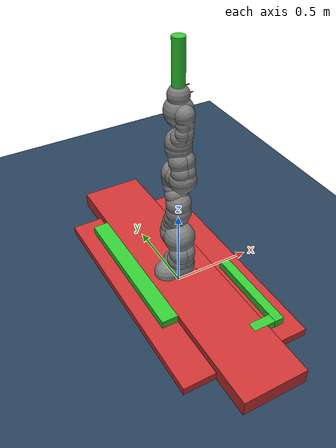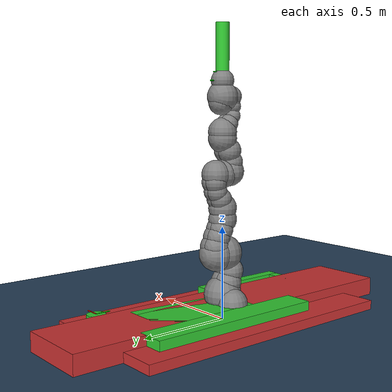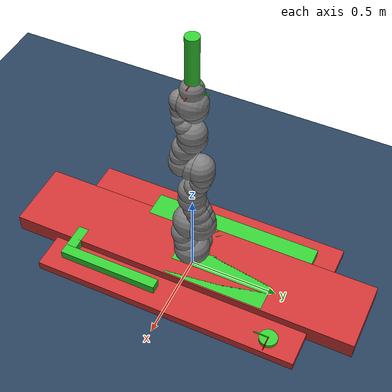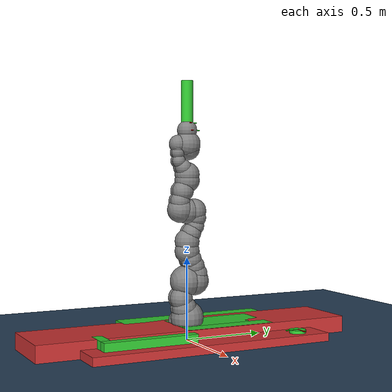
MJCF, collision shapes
<mujoco model="ur5e scene">
  <compiler angle="radian" meshdir="kuka/assets" autolimits="true"/>

  <statistic center="0.3 0 0.4" extent="0.8"/>

  <visual>
    <headlight diffuse="0.6 0.6 0.6" ambient="0.1 0.1 0.1" specular="0 0 0"/>
    <rgba haze="0.15 0.25 0.35 1"/>
    <global azimuth="120" elevation="-20"/>
  </visual>

  <asset>
    <texture type="skybox" builtin="gradient" rgb1="0.3 0.5 0.7" rgb2="0 0 0" width="512" height="3072"/>
    <texture type="2d" name="groundplane" builtin="checker" mark="edge" rgb1="0.2 0.3 0.4" rgb2="0.1 0.2 0.3" markrgb="0.8 0.8 0.8" width="300" height="300"/>
    <material name="groundplane" texture="groundplane" texuniform="true" texrepeat="5 5" reflectance="0.2"/>
  <material class="iiwa" name="gray" rgba="0.4 0.4 0.4 1"/>
    <material class="iiwa" name="light_gray" rgba="0.6 0.6 0.6 1"/>
    <material class="iiwa" name="black" rgba="0 0 0 1"/>
    <material class="iiwa" name="orange" rgba="1 0.423529 0.0392157 1"/>

    <mesh file="link_0.obj"/>
    <mesh file="link_1.obj"/>
    <mesh file="link_2_orange.obj"/>
    <mesh file="link_2_grey.obj"/>
    <mesh file="link_3.obj"/>
    <mesh file="band.obj"/>
    <mesh file="kuka.obj"/>
    <mesh file="link_4_orange.obj"/>
    <mesh file="link_4_grey.obj"/>
    <mesh file="link_5.obj"/>
    <mesh file="link_6_orange.obj"/>
    <mesh file="link_6_grey.obj"/>
    <mesh file="link_7.obj"/>
  <mesh name="tool_mesh" file="driller.obj"/>
  <mesh name="aluminium_plate_mesh" file="aluminium_plate.obj"/>
  <mesh name="guide_mesh" file="Linear_guide.obj"/>
  </asset>

  <worldbody>
    <light pos="0 0 1.5" dir="0 0 -1" directional="true"/>
    <geom name="floor" size="0 0 0.05" type="plane" material="groundplane"/>
    <!-- Definition of the world frame -->
    <body name="world_frame" pos="0.0 0.0 0.0">
        <geom name="world_x_axis" type="capsule" fromto="0 0 0 0.15 0 0" size="0.01" rgba="1 0 0 1" contype="0" conaffinity="0"/>
        <geom name="world_y_axis" type="capsule" fromto="0 0 0 0 0.15 0" size="0.01" rgba="0 1 0 1" contype="0" conaffinity="0"/>
        <geom name="world_z_axis" type="capsule" fromto="0 0 0 0 0 0.15" size="0.01" rgba="0 0 1 1" contype="0" conaffinity="0"/>
    </body>

  <light name="top" pos="0 0 2" mode="trackcom"/>
    <body name="base" childclass="iiwa">
      <inertial mass="5" pos="-0.1 0 0.07" diaginertia="0.05 0.06 0.03"/>
      <geom class="visual" mesh="link_0"/>
      <geom class="collision" size="0.08" pos="-0.08 0 0.103"/>
      <geom class="collision" size="0.08" pos="-0.08 0 0.04"/>
      <geom class="collision" size="0.1" pos="0 0 0.14"/>
      <body name="link1" pos="0 0 0.1575">
        <inertial mass="5.76" pos="0 -0.03 0.12" diaginertia="0.0333 0.033 0.0123"/>
        <joint name="joint1" class="joint1"/>
        <geom class="visual" mesh="link_1"/>
        <geom class="collision" size="0.08" pos="0 0 -0.0005"/>
        <geom class="collision" size="0.075" pos="0.01 -0.025 0.0425"/>
        <geom class="collision" size="0.075" pos="-0.01 -0.025 0.0425"/>
        <geom class="collision" size="0.07" pos="0.01 -0.045 0.1025"/>
        <geom class="collision" size="0.07" pos="-0.01 -0.045 0.1025"/>
        <body name="link2" pos="0 0 0.2025" quat="0 0 1 1">
          <inertial mass="6.35" pos="0.0003 0.059 0.042" diaginertia="0.0305 0.0304 0.011" quat="0 0 1 1"/>
          <joint name="joint2" class="joint2"/>
          <geom class="visual" material="orange" mesh="link_2_orange"/>
          <geom class="visual" mesh="link_2_grey"/>
          <geom class="collision" size="0.095" pos="0 0 -0.01"/>
          <geom class="collision" size="0.09" pos="0 0 0.045"/>
          <geom class="collision" size="0.07" pos="-0.01 0.04 0.054"/>
          <geom class="collision" size="0.065" pos="-0.01 0.09 0.04"/>
          <geom class="collision" size="0.065" pos="-0.01 0.13 0.02"/>
          <geom class="collision" size="0.07" pos="0.01 0.04 0.054"/>
          <geom class="collision" size="0.065" pos="0.01 0.09 0.04"/>
          <geom class="collision" size="0.065" pos="0.01 0.13 0.02"/>
          <geom class="collision" size="0.075" pos="0 0.18 0"/>
          <body name="link3" pos="0 0.2045 0" quat="0 0 1 1">
            <inertial mass="3.5" pos="0 0.03 0.13" diaginertia="0.025 0.0238 0.0076"/>
            <joint name="joint3" class="joint1"/>
            <geom class="visual" mesh="link_3"/>
            <geom class="visual" material="light_gray" mesh="band"/>
            <geom class="visual" material="black" mesh="kuka"/>
            <geom class="collision" size="0.075" pos="0 0 0.0355"/>
            <geom class="collision" size="0.06" pos="0.01 0.023 0.0855"/>
            <geom class="collision" size="0.055" pos="0.01 0.048 0.1255"/>
            <geom class="collision" size="0.06" pos="0.01 0.056 0.1755"/>
            <geom class="collision" size="0.06" pos="-0.01 0.023 0.0855"/>
            <geom class="collision" size="0.055" pos="-0.01 0.048 0.1255"/>
            <geom class="collision" size="0.06" pos="-0.01 0.056 0.1755"/>
            <geom class="collision" size="0.075" pos="0 0.045 0.2155"/>
            <geom class="collision" size="0.075" pos="0 0 0.2155"/>
            <body name="link4" pos="0 0 0.2155" quat="1 1 0 0">
              <inertial mass="3.5" pos="0 0.067 0.034" diaginertia="0.017 0.0164 0.006" quat="1 1 0 0"/>
              <joint name="joint4" class="joint2"/>
              <geom class="visual" material="orange" mesh="link_4_orange"/>
              <geom class="visual" mesh="link_4_grey"/>
              <geom class="collision" size="0.078" pos="0 0.01 0.046"/>
              <geom class="collision" size="0.06" pos="0.01 0.06 0.052"/>
              <geom class="collision" size="0.065" pos="0.01 0.12 0.034"/>
              <geom class="collision" size="0.06" pos="-0.01 0.06 0.052"/>
              <geom class="collision" size="0.065" pos="-0.01 0.12 0.034"/>
              <geom class="collision" size="0.075" pos="0 0.184 0"/>
              <body name="link5" pos="0 0.1845 0" quat="0 0 1 1">
                <inertial mass="3.5" pos="0.0001 0.021 0.076" diaginertia="0.01 0.0087 0.00449"/>
                <joint name="joint5" class="joint1"/>
                <geom class="visual" mesh="link_5"/>
                <geom class="visual" material="light_gray" mesh="band"/>
                <geom class="visual" material="black" mesh="kuka"/>
                <geom class="collision" size="0.075" pos="0 0 0.0335"/>
                <geom class="collision" size="0.05" pos="-0.012 0.031 0.0755"/>
                <geom class="collision" size="0.05" pos="0.012 0.031 0.0755"/>
                <geom class="collision" size="0.04" pos="-0.012 0.06 0.1155"/>
                <geom class="collision" size="0.04" pos="0.012 0.06 0.1155"/>
                <geom class="collision" size="0.04" pos="-0.01 0.065 0.1655"/>
                <geom class="collision" size="0.04" pos="0.01 0.065 0.1655"/>
                <geom class="collision" size="0.035" pos="-0.012 0.065 0.1855"/>
                <geom class="collision" size="0.035" pos="0.012 0.065 0.1855"/>
                <body name="link6" pos="0 0 0.2155" quat="1 1 0 0">
                  <inertial mass="1.8" pos="0 0.0006 0.0004" diaginertia="0.0049 0.0047 0.0036" quat="1 1 0 0"/>
                  <joint name="joint6" class="joint2"/>
                  <geom class="visual" material="orange" mesh="link_6_orange"/>
                  <geom class="visual" mesh="link_6_grey"/>
                  <geom class="collision" size="0.055" pos="0 0 -0.059"/>
                  <geom class="collision" size="0.065" pos="0 -0.03 0.011"/>
                  <geom class="collision" size="0.08"/>
                  <body name="link7" pos="0 0.081 0" quat="0 0 1 1">
                    <inertial mass="1.2" pos="0 0 0.02" diaginertia="0.001 0.001 0.001"/>
                    <!-- Reference frame: wrist_3_link -->
                    <geom type="capsule" fromto="0 0 0 0.08 0 0" rgba="1 0 0 1" size="0.003" contype="0" conaffinity="0"/>
                    <geom type="capsule" fromto="0 0 0 0 0.08 0" rgba="0 1 0 1" size="0.003" contype="0" conaffinity="0"/>
                    <geom type="capsule" fromto="0 0 0 0 0 0.08" rgba="0 0 1 1" size="0.003" contype="0" conaffinity="0"/>
                    <joint name="joint7" class="joint3"/>
                    <geom class="visual" mesh="link_7"/>
                    <geom class="collision" size="0.06" pos="0 0 0.001"/>
                    <site pos="0 0 0.045" name="attachment_site"/>
                    <geom type="capsule" fromto="0 0 0 0.05 0 0" rgba="1 0 0 1" size="0.002" contype="0" conaffinity="0"/>
                    <geom type="capsule" fromto="0 0 0 0 0.05 0" rgba="0 1 0 1" size="0.002" contype="0" conaffinity="0"/>
                    <geom type="capsule" fromto="0 0 0 0 0 0.05" rgba="0 0 1 1" size="0.002" contype="0" conaffinity="0"/>
                    <body name="ee_frame_visual_only" pos="0 0 0.045">
                      <geom type="capsule" fromto="0 0 0 0.05 0 0" rgba="1 0 0 1" size="0.002" contype="0" conaffinity="0"/>
                      <geom type="capsule" fromto="0 0 0 0 0.05 0" rgba="0 1 0 1" size="0.002" contype="0" conaffinity="0"/>
                      <geom type="capsule" fromto="0 0 0 0 0 0.05" rgba="0 0 1 1" size="0.002" contype="0" conaffinity="0"/>
                      <!-- The tool is imported by a python code -->

                      <!-- Reference frame attached @ tool tip for screwing (T) -->
                      <body name="tool_frame" pos="0 0 0" quat="1 0 0 0">
                        <site name="tool_site" pos="0 0 0" quat="1 0 0 0"/>
                        <geom type="capsule" fromto="0 0 0 0.06 0 0" rgba="1 0 0 1" size="0.003" contype="0" conaffinity="0"/>
                        <geom type="capsule" fromto="0 0 0 0 0.06 0" rgba="0 1 0 1" size="0.003" contype="0" conaffinity="0"/>
                        <geom type="capsule" fromto="0 0 0 0 0 0.06" rgba="0 0 1 1" size="0.003" contype="0" conaffinity="0"/>
                    </body>
                  <body name="tool_top" pos="0 0 0">
      <inertial mass="3.75" pos="0 0 0.1" diaginertia="0.021 0.021 0.003"/>
      <geom type="mesh" mesh="tool_mesh" rgba="0.2 0.2 0.2 1" contype="0" conaffinity="0" group="0"/>
      <!-- collision cylinder -->
      <geom name="driller" type="cylinder" size="0.035 0.125" pos="0 0 0.125" rgba="0.2 0.8 0.2 1" contype="1" conaffinity="1" group="3"/>
      <!-- Marker (red sphere) to specify the origin -->
      <site name="mount_site" pos="0 0 0" size="0.005" rgba="1 0 0 1"/>
      <!-- Marker (green sphere) to specify the point of application of the weight -->
      <geom type="sphere" size="0.005" pos="0 0 0.1" rgba="0 1 0 1" contype="0" conaffinity="0" group="2"/>
    </body>
  </body>
                  </body>
                </body>
              </body>
            </body>
          </body>
        </body>
      </body>
    </body>
  <body name="aluminium_plate" pos="0 0 0">

      <geom type="mesh" mesh="aluminium_plate_mesh" rgba="0.45 0.45 0.45 1" contype="0" conaffinity="0" group="0"/>
      <!-- Base plate -->
      <geom name="base_plate" type="box" size="0.4 0.75 0.025" pos="0 0 0.025" rgba="0.8 0.2 0.2 1" contype="1" conaffinity="1" group="3"/>

      <!-- right top cube -->
      <geom name="right_top_cube" type="box" size="0.0755 0.485 0.025" pos="-0.226 0.141 0.075" rgba="0.2 0.8 0.2 1" contype="1" conaffinity="1" group="3"/>

      <!-- right middle cube -->
      <geom name="right_middle_cube" type="box" size="0.1205 0.2835 0.025" pos="-0.03 0.202 0.075" rgba="0.2 0.8 0.2 1" contype="1" conaffinity="1" group="3"/>

      <!-- right bottom cube -->
      <geom name="right_bottom_cube" type="box" size="0.051 0.2835 0.025" pos="0.141 0.202 0.075" rgba="0.2 0.8 0.2 1" contype="1" conaffinity="1" group="3"/>

      <!-- lower bottom cube -->
      <geom name="lower_bottom_cube" type="box" size="0.0295 0.285 0.025" pos="0.284 -0.367 0.075" rgba="0.2 0.8 0.2 1" contype="1" conaffinity="1" group="3"/>

      <!-- lower top cube -->
      <geom name="lower_top_cube" type="box" size="0.0705 0.0295 0.025" pos="0.184 -0.622 0.075" rgba="0.2 0.8 0.2 1" contype="1" conaffinity="1" group="3"/>

      <!-- left cylinder -->
      <geom name="left_cylinder" type="cylinder" size="0.05 0.01" pos="0 -0.373 0.06" rgba="0.2 0.8 0.2 1" contype="1" conaffinity="1" group="3"/>

      <!-- right cylinder -->
      <geom name="right_cylinder" type="cylinder" size="0.05 0.01" pos="0.317 0.583 0.06" rgba="0.2 0.8 0.2 1" contype="1" conaffinity="1" group="3"/>

      <!-- Definition of the sites -->
      <!-- center of the piece -->
      <site name="mount_plate_site" pos="0.0 0.0 0.0" size="0.005" rgba="1 0 0 1"/>

      <!-- Hole 1 -->
      <body name="hole_1_frame_body" pos="0 -0.373 0.07" quat="0 1 0 0">
        <geom type="capsule" fromto="0 0 0 0.08 0 0" rgba="1 0 0 1" size="0.003" contype="0" conaffinity="0"/>
        <geom type="capsule" fromto="0 0 0 0 0.08 0" rgba="0 1 0 1" size="0.003" contype="0" conaffinity="0"/>
        <geom type="capsule" fromto="0 0 0 0 0 0.08" rgba="0 0 1 1" size="0.003" contype="0" conaffinity="0"/>
      </body>

      <!-- Hole 2 -->
      <body name="hole_2_frame_body" pos="0.317 0.583 0.07" quat="0 1 0 0">
        <geom type="capsule" fromto="0 0 0 0.08 0 0" rgba="1 0 0 1" size="0.003" contype="0" conaffinity="0"/>
        <geom type="capsule" fromto="0 0 0 0 0.08 0" rgba="0 1 0 1" size="0.003" contype="0" conaffinity="0"/>
        <geom type="capsule" fromto="0 0 0 0 0 0.08" rgba="0 0 1 1" size="0.003" contype="0" conaffinity="0"/>
      </body>

    </body>
  <body name="obstacle_body" pos="0 0 0">
      <inertial mass="624" pos="0 0 0.05" diaginertia="208.52 8.84 216.32"/>
      <geom type="mesh" mesh="guide_mesh" rgba="0.2 0.2 0.2 1" contype="0" conaffinity="0" group="0"/>
      <!-- collision cylinder -->
      <geom name="base_plate_guide" type="box" size="0.2 1 0.05" pos="0 0 0.05" rgba="0.8 0.2 0.2 1" contype="1" conaffinity="1" group="3"/>
      <!-- Marker (red sphere) to specify the origin -->
      <site name="mount_site_guide" pos="0 0 0" size="0.005" rgba="1 0 0 1"/>
      <!-- Marker (green sphere) to specify the point of application of the weight -->
      <geom type="sphere" size="0.005" pos="0 0 0.05" rgba="0 1 0 1" contype="0" conaffinity="0" group="2"/>
    </body>
  </worldbody>

<default><default class="iiwa">
      <material specular="0.5" shininess="0.25"/>
      <joint axis="0 0 1"/>
      <general gaintype="fixed" biastype="affine" gainprm="2000" biasprm="0 -2000 -200"/>
      <default class="joint1">
        <joint range="-2.96706 2.96706"/>
        <general ctrlrange="-2.96706 2.96706"/>
        <default class="joint2">
          <joint range="-2.0944 2.0944"/>
          <general ctrlrange="-2.0944 2.0944"/>
        </default>
      </default>
      <default class="joint3">
        <joint range="-3.05433 3.05433"/>
        <general ctrlrange="-3.05433 3.05433"/>
      </default>
      <default class="visual">
        <geom type="mesh" contype="0" conaffinity="0" group="2" material="gray"/>
      </default>
      <default class="collision">
        <geom group="3"/>
      </default>
      <site size="0.001" rgba="1 0 0 1" group="4"/>
    </default>
  <geom condim="3" friction="1 0.5 0.01" solref="0.02 1" solimp="0.9 0.95 0.001"/>
  </default><actuator><motor joint="joint1" gear="1"/>
    <motor joint="joint2" gear="1"/>
    <motor joint="joint3" gear="1"/>
    <motor joint="joint4" gear="1"/>
    <motor joint="joint5" gear="1"/>
    <motor joint="joint6" gear="1"/>
    <motor joint="joint7" gear="1"/>
  </actuator><contact><exclude body1="base" body2="link1"/><exclude body1="base" body2="link2"/><exclude body1="base" body2="link3"/><exclude body1="link1" body2="link3"/><exclude body1="link3" body2="link5"/><exclude body1="link4" body2="link7"/><exclude body1="link5" body2="link7"/></contact></mujoco>
